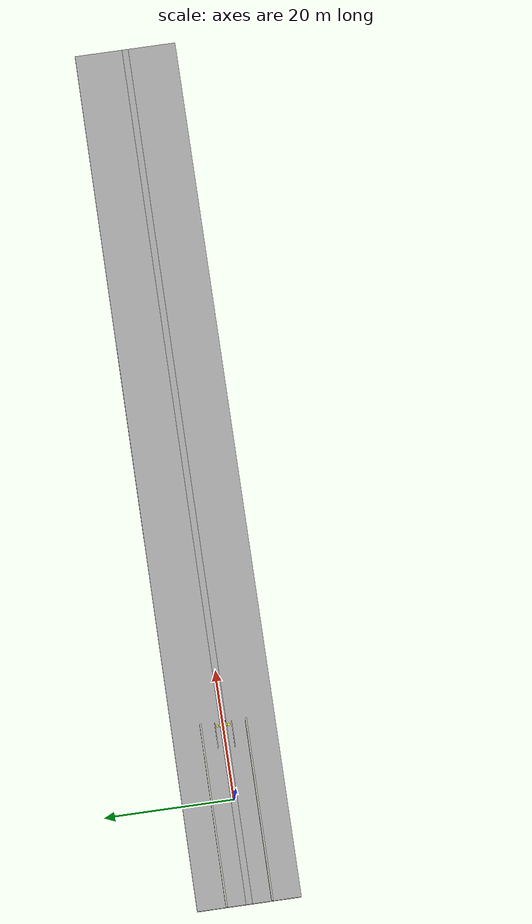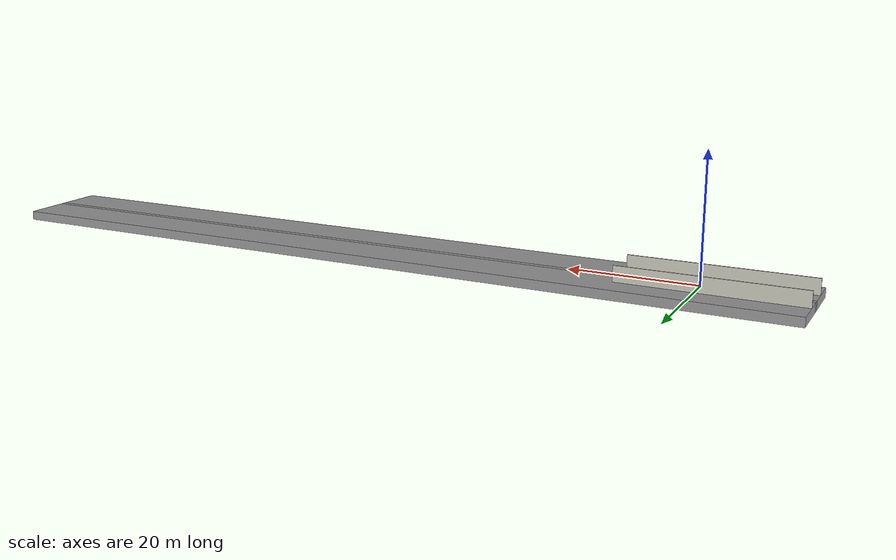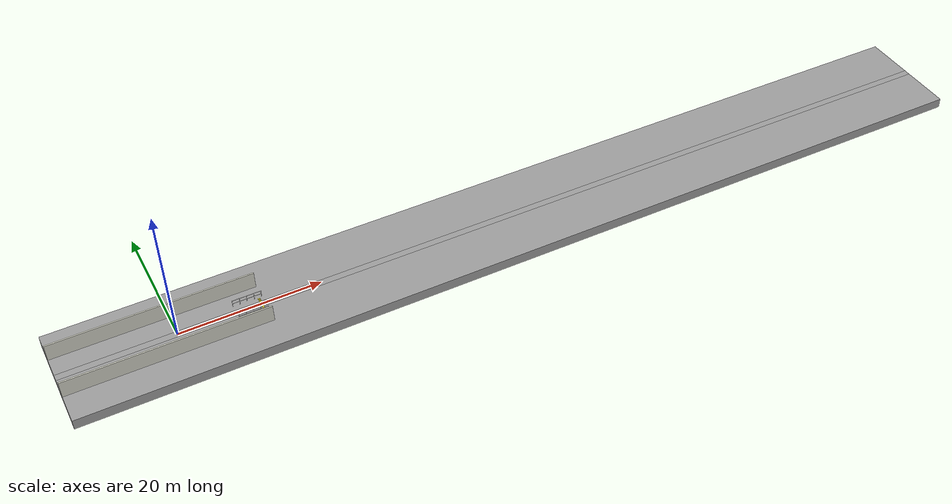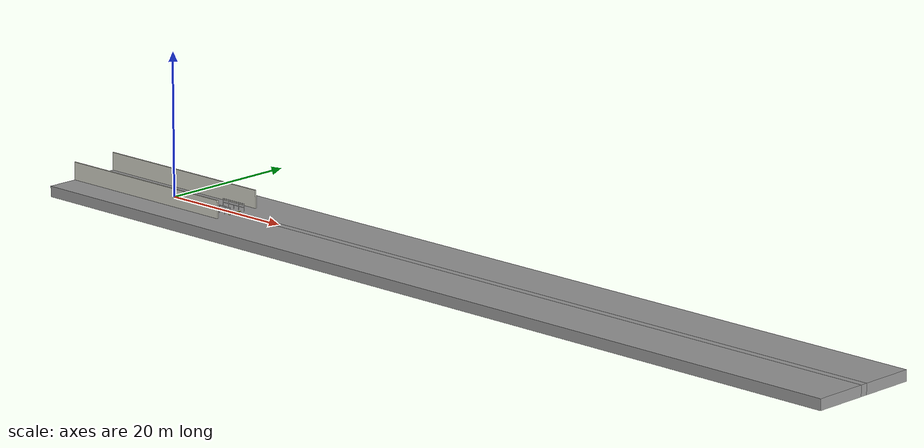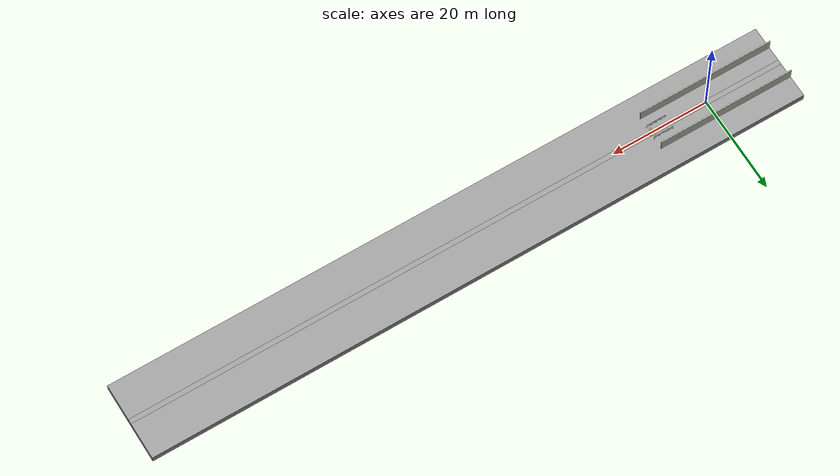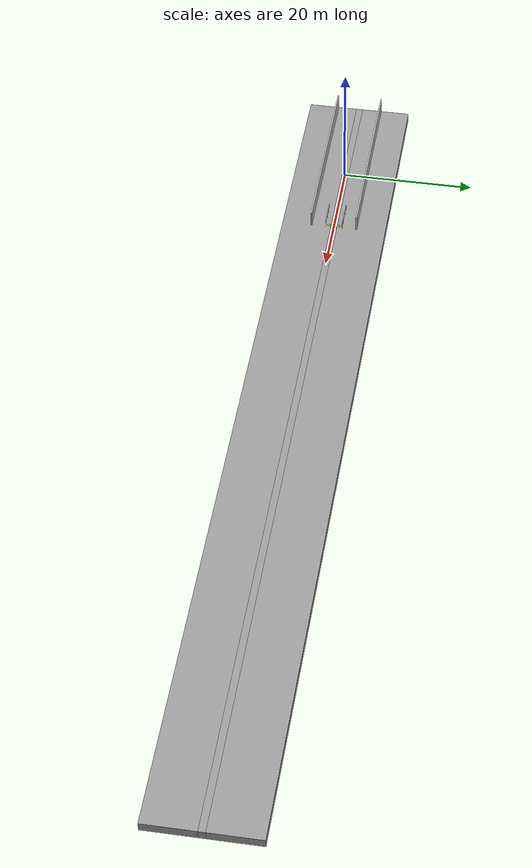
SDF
<?xml version="1.0" ?>
<sdf version="1.6">
  <world name="default">
    <gui>
      <camera name="gzclient_camera">
        <pose>6 -7 3.2 0 0.32 0.72</pose>
      </camera>
    </gui>

    <physics type="ode">
      <gravity>0 0 -9.81</gravity>
      <ode>
        <solver><type>quick</type><iters>20</iters><sor>1.0</sor></solver>
        <constraints>
          <cfm>0.0</cfm><erp>0.2</erp>
          <contact_max_correcting_vel>100.0</contact_max_correcting_vel>
          <contact_surface_layer>0.0</contact_surface_layer>
        </constraints>
      </ode>
      <real_time_update_rate>1000</real_time_update_rate>
      <max_step_size>0.001</max_step_size>
    </physics>

    <scene>
      <ambient>0.45 0.45 0.48 1</ambient>
      <background>0.72 0.78 0.88 1</background>
      <shadows>true</shadows>
      <grid>false</grid>
      <origin_visual>false</origin_visual>
    </scene>

    <!-- Single hard directional light.  Shadow contrast inside the drop is a real cue and
         must be identical between the hazard arm and the ctrl arm. -->
    <light name="sun" type="directional">
      <pose>0 0 12 0 0 0</pose>
      <diffuse>0.90 0.88 0.85 1</diffuse>
      <specular>0.25 0.25 0.25 1</specular>
      <direction>0.35 0.30 -0.89</direction>
      <cast_shadows>true</cast_shadows>
    </light>

    <model name="deck_left">
      <static>true</static>
      <pose>52 4.25 -0.75 0 0 0</pose>
      <link name="link">
        <collision name="c">
          <geometry><box><size>136 7.5 1.5</size></box></geometry>
          <surface><friction><ode><mu>1.0</mu><mu2>1.0</mu2></ode></friction></surface>
        </collision>
        <visual name="v">
          <geometry><box><size>136 7.5 1.5</size></box></geometry>
          <material><script><uri>file://media/materials/scripts/gazebo.material</uri>
            <name>Gazebo/Grey</name></script></material>
        </visual>
      </link>
    </model>
    <model name="deck_right">
      <static>true</static>
      <pose>52 -4.25 -0.75 0 0 0</pose>
      <link name="link">
        <collision name="c">
          <geometry><box><size>136 7.5 1.5</size></box></geometry>
          <surface><friction><ode><mu>1.0</mu><mu2>1.0</mu2></ode></friction></surface>
        </collision>
        <visual name="v">
          <geometry><box><size>136 7.5 1.5</size></box></geometry>
          <material><script><uri>file://media/materials/scripts/gazebo.material</uri>
            <name>Gazebo/Grey</name></script></material>
        </visual>
      </link>
    </model>
    <model name="deck_near">
      <static>true</static>
      <pose>-2 0 -0.75 0 0 0</pose>
      <link name="link">
        <collision name="c">
          <geometry><box><size>28 1 1.5</size></box></geometry>
          <surface><friction><ode><mu>1.0</mu><mu2>1.0</mu2></ode></friction></surface>
        </collision>
        <visual name="v">
          <geometry><box><size>28 1 1.5</size></box></geometry>
          <material><script><uri>file://media/materials/scripts/gazebo.material</uri>
            <name>Gazebo/Grey</name></script></material>
        </visual>
      </link>
    </model>
    <model name="deck_far">
      <static>true</static>
      <pose>66.125 0 -0.75 0 0 0</pose>
      <link name="link">
        <collision name="c">
          <geometry><box><size>107.75 1 1.5</size></box></geometry>
          <surface><friction><ode><mu>1.0</mu><mu2>1.0</mu2></ode></friction></surface>
        </collision>
        <visual name="v">
          <geometry><box><size>107.75 1 1.5</size></box></geometry>
          <material><script><uri>file://media/materials/scripts/gazebo.material</uri>
            <name>Gazebo/Grey</name></script></material>
        </visual>
      </link>
    </model>
    <model name="trench_floor">
      <static>true</static>
      <pose>12.125 0 -0.85 0 0 0</pose>
      <link name="link">
        <collision name="c">
          <geometry><box><size>0.25 1 0.3</size></box></geometry>
          <surface><friction><ode><mu>1.0</mu><mu2>1.0</mu2></ode></friction></surface>
        </collision>
        <visual name="v">
          <geometry><box><size>0.25 1 0.3</size></box></geometry>
          <material><script><uri>file://media/materials/scripts/gazebo.material</uri>
            <name>Gazebo/DarkGrey</name></script></material>
        </visual>
      </link>
    </model>
    <model name="wall_py">
      <static>true</static>
      <pose>-2 3.5 1.25 0 0 0</pose>
      <link name="link">
        <collision name="c">
          <geometry><box><size>28 0.2 2.5</size></box></geometry>
          <surface><friction><ode><mu>1.0</mu><mu2>1.0</mu2></ode></friction></surface>
        </collision>
        <visual name="v">
          <geometry><box><size>28 0.2 2.5</size></box></geometry>
          <material><script><uri>file://media/materials/scripts/gazebo.material</uri>
            <name>Gazebo/PaintedWall</name></script></material>
        </visual>
      </link>
    </model>
    <model name="wall_my">
      <static>true</static>
      <pose>-2 -3.5 1.25 0 0 0</pose>
      <link name="link">
        <collision name="c">
          <geometry><box><size>28 0.2 2.5</size></box></geometry>
          <surface><friction><ode><mu>1.0</mu><mu2>1.0</mu2></ode></friction></surface>
        </collision>
        <visual name="v">
          <geometry><box><size>28 0.2 2.5</size></box></geometry>
          <material><script><uri>file://media/materials/scripts/gazebo.material</uri>
            <name>Gazebo/PaintedWall</name></script></material>
        </visual>
      </link>
    </model>
    <model name="rail_py">
      <static>true</static>
      <pose>0 0 0 0 0 0</pose>
      <link name="link">
        <collision name="c_s0">
          <pose>8 1.3 0.55 0 0 0</pose>
          <geometry><cylinder><radius>0.03</radius><length>1.1</length></cylinder></geometry>
        </collision>
        <visual name="s0">
          <pose>8 1.3 0.55 0 0 0</pose>
          <geometry><cylinder><radius>0.03</radius><length>1.1</length></cylinder></geometry>
          <material><script><uri>file://media/materials/scripts/gazebo.material</uri>
            <name>Gazebo/White</name></script></material>
        </visual>
        <collision name="c_s1">
          <pose>9 1.3 0.55 0 0 0</pose>
          <geometry><cylinder><radius>0.03</radius><length>1.1</length></cylinder></geometry>
        </collision>
        <visual name="s1">
          <pose>9 1.3 0.55 0 0 0</pose>
          <geometry><cylinder><radius>0.03</radius><length>1.1</length></cylinder></geometry>
          <material><script><uri>file://media/materials/scripts/gazebo.material</uri>
            <name>Gazebo/White</name></script></material>
        </visual>
        <collision name="c_s2">
          <pose>10 1.3 0.55 0 0 0</pose>
          <geometry><cylinder><radius>0.03</radius><length>1.1</length></cylinder></geometry>
        </collision>
        <visual name="s2">
          <pose>10 1.3 0.55 0 0 0</pose>
          <geometry><cylinder><radius>0.03</radius><length>1.1</length></cylinder></geometry>
          <material><script><uri>file://media/materials/scripts/gazebo.material</uri>
            <name>Gazebo/White</name></script></material>
        </visual>
        <collision name="c_s3">
          <pose>11 1.3 0.55 0 0 0</pose>
          <geometry><cylinder><radius>0.03</radius><length>1.1</length></cylinder></geometry>
        </collision>
        <visual name="s3">
          <pose>11 1.3 0.55 0 0 0</pose>
          <geometry><cylinder><radius>0.03</radius><length>1.1</length></cylinder></geometry>
          <material><script><uri>file://media/materials/scripts/gazebo.material</uri>
            <name>Gazebo/White</name></script></material>
        </visual>
        <collision name="c_s4">
          <pose>12 1.3 0.55 0 0 0</pose>
          <geometry><cylinder><radius>0.03</radius><length>1.1</length></cylinder></geometry>
        </collision>
        <visual name="s4">
          <pose>12 1.3 0.55 0 0 0</pose>
          <geometry><cylinder><radius>0.03</radius><length>1.1</length></cylinder></geometry>
          <material><script><uri>file://media/materials/scripts/gazebo.material</uri>
            <name>Gazebo/White</name></script></material>
        </visual>
        <collision name="c_s5">
          <pose>10 1.3 1.05 0 1.5708 0</pose>
          <geometry><cylinder><radius>0.035</radius><length>4.1</length></cylinder></geometry>
        </collision>
        <visual name="s5">
          <pose>10 1.3 1.05 0 1.5708 0</pose>
          <geometry><cylinder><radius>0.035</radius><length>4.1</length></cylinder></geometry>
          <material><script><uri>file://media/materials/scripts/gazebo.material</uri>
            <name>Gazebo/White</name></script></material>
        </visual>
        <collision name="c_s6">
          <pose>10 1.3 0.55 0 1.5708 0</pose>
          <geometry><cylinder><radius>0.035</radius><length>4.1</length></cylinder></geometry>
        </collision>
        <visual name="s6">
          <pose>10 1.3 0.55 0 1.5708 0</pose>
          <geometry><cylinder><radius>0.035</radius><length>4.1</length></cylinder></geometry>
          <material><script><uri>file://media/materials/scripts/gazebo.material</uri>
            <name>Gazebo/White</name></script></material>
        </visual>
      </link>
    </model>
    <model name="rail_my">
      <static>true</static>
      <pose>0 0 0 0 0 0</pose>
      <link name="link">
        <collision name="c_s0">
          <pose>8 -1.3 0.55 0 0 0</pose>
          <geometry><cylinder><radius>0.03</radius><length>1.1</length></cylinder></geometry>
        </collision>
        <visual name="s0">
          <pose>8 -1.3 0.55 0 0 0</pose>
          <geometry><cylinder><radius>0.03</radius><length>1.1</length></cylinder></geometry>
          <material><script><uri>file://media/materials/scripts/gazebo.material</uri>
            <name>Gazebo/White</name></script></material>
        </visual>
        <collision name="c_s1">
          <pose>9 -1.3 0.55 0 0 0</pose>
          <geometry><cylinder><radius>0.03</radius><length>1.1</length></cylinder></geometry>
        </collision>
        <visual name="s1">
          <pose>9 -1.3 0.55 0 0 0</pose>
          <geometry><cylinder><radius>0.03</radius><length>1.1</length></cylinder></geometry>
          <material><script><uri>file://media/materials/scripts/gazebo.material</uri>
            <name>Gazebo/White</name></script></material>
        </visual>
        <collision name="c_s2">
          <pose>10 -1.3 0.55 0 0 0</pose>
          <geometry><cylinder><radius>0.03</radius><length>1.1</length></cylinder></geometry>
        </collision>
        <visual name="s2">
          <pose>10 -1.3 0.55 0 0 0</pose>
          <geometry><cylinder><radius>0.03</radius><length>1.1</length></cylinder></geometry>
          <material><script><uri>file://media/materials/scripts/gazebo.material</uri>
            <name>Gazebo/White</name></script></material>
        </visual>
        <collision name="c_s3">
          <pose>11 -1.3 0.55 0 0 0</pose>
          <geometry><cylinder><radius>0.03</radius><length>1.1</length></cylinder></geometry>
        </collision>
        <visual name="s3">
          <pose>11 -1.3 0.55 0 0 0</pose>
          <geometry><cylinder><radius>0.03</radius><length>1.1</length></cylinder></geometry>
          <material><script><uri>file://media/materials/scripts/gazebo.material</uri>
            <name>Gazebo/White</name></script></material>
        </visual>
        <collision name="c_s4">
          <pose>12 -1.3 0.55 0 0 0</pose>
          <geometry><cylinder><radius>0.03</radius><length>1.1</length></cylinder></geometry>
        </collision>
        <visual name="s4">
          <pose>12 -1.3 0.55 0 0 0</pose>
          <geometry><cylinder><radius>0.03</radius><length>1.1</length></cylinder></geometry>
          <material><script><uri>file://media/materials/scripts/gazebo.material</uri>
            <name>Gazebo/White</name></script></material>
        </visual>
        <collision name="c_s5">
          <pose>10 -1.3 1.05 0 1.5708 0</pose>
          <geometry><cylinder><radius>0.035</radius><length>4.1</length></cylinder></geometry>
        </collision>
        <visual name="s5">
          <pose>10 -1.3 1.05 0 1.5708 0</pose>
          <geometry><cylinder><radius>0.035</radius><length>4.1</length></cylinder></geometry>
          <material><script><uri>file://media/materials/scripts/gazebo.material</uri>
            <name>Gazebo/White</name></script></material>
        </visual>
        <collision name="c_s6">
          <pose>10 -1.3 0.55 0 1.5708 0</pose>
          <geometry><cylinder><radius>0.035</radius><length>4.1</length></cylinder></geometry>
        </collision>
        <visual name="s6">
          <pose>10 -1.3 0.55 0 1.5708 0</pose>
          <geometry><cylinder><radius>0.035</radius><length>4.1</length></cylinder></geometry>
          <material><script><uri>file://media/materials/scripts/gazebo.material</uri>
            <name>Gazebo/White</name></script></material>
        </visual>
      </link>
    </model>
    <model name="warn_strip">
      <static>true</static>
      <pose>0 0 0 0 0 0</pose>
      <link name="link">
        <visual name="slab">
          <pose>11.55 0 0.003 0 0 0</pose>
          <geometry><box><size>0.3 2.2 0.006</size></box></geometry>
          <material><script><uri>file://media/materials/scripts/gazebo.material</uri>
            <name>Gazebo/Yellow</name></script></material>
        </visual>
        <visual name="d0">
          <pose>11.45 -1 0.01 0 0 0</pose>
          <geometry><box><size>0.05 0.05 0.008</size></box></geometry>
          <material><script><uri>file://media/materials/scripts/gazebo.material</uri>
            <name>Gazebo/ZincYellow</name></script></material>
        </visual>
        <visual name="d1">
          <pose>11.45 -0.875 0.01 0 0 0</pose>
          <geometry><box><size>0.05 0.05 0.008</size></box></geometry>
          <material><script><uri>file://media/materials/scripts/gazebo.material</uri>
            <name>Gazebo/ZincYellow</name></script></material>
        </visual>
        <visual name="d2">
          <pose>11.45 -0.75 0.01 0 0 0</pose>
          <geometry><box><size>0.05 0.05 0.008</size></box></geometry>
          <material><script><uri>file://media/materials/scripts/gazebo.material</uri>
            <name>Gazebo/ZincYellow</name></script></material>
        </visual>
        <visual name="d3">
          <pose>11.45 -0.625 0.01 0 0 0</pose>
          <geometry><box><size>0.05 0.05 0.008</size></box></geometry>
          <material><script><uri>file://media/materials/scripts/gazebo.material</uri>
            <name>Gazebo/ZincYellow</name></script></material>
        </visual>
        <visual name="d4">
          <pose>11.45 -0.5 0.01 0 0 0</pose>
          <geometry><box><size>0.05 0.05 0.008</size></box></geometry>
          <material><script><uri>file://media/materials/scripts/gazebo.material</uri>
            <name>Gazebo/ZincYellow</name></script></material>
        </visual>
        <visual name="d5">
          <pose>11.45 -0.375 0.01 0 0 0</pose>
          <geometry><box><size>0.05 0.05 0.008</size></box></geometry>
          <material><script><uri>file://media/materials/scripts/gazebo.material</uri>
            <name>Gazebo/ZincYellow</name></script></material>
        </visual>
        <visual name="d6">
          <pose>11.45 -0.25 0.01 0 0 0</pose>
          <geometry><box><size>0.05 0.05 0.008</size></box></geometry>
          <material><script><uri>file://media/materials/scripts/gazebo.material</uri>
            <name>Gazebo/ZincYellow</name></script></material>
        </visual>
        <visual name="d7">
          <pose>11.45 -0.125 0.01 0 0 0</pose>
          <geometry><box><size>0.05 0.05 0.008</size></box></geometry>
          <material><script><uri>file://media/materials/scripts/gazebo.material</uri>
            <name>Gazebo/ZincYellow</name></script></material>
        </visual>
        <visual name="d8">
          <pose>11.45 0 0.01 0 0 0</pose>
          <geometry><box><size>0.05 0.05 0.008</size></box></geometry>
          <material><script><uri>file://media/materials/scripts/gazebo.material</uri>
            <name>Gazebo/ZincYellow</name></script></material>
        </visual>
        <visual name="d9">
          <pose>11.45 0.125 0.01 0 0 0</pose>
          <geometry><box><size>0.05 0.05 0.008</size></box></geometry>
          <material><script><uri>file://media/materials/scripts/gazebo.material</uri>
            <name>Gazebo/ZincYellow</name></script></material>
        </visual>
        <visual name="d10">
          <pose>11.45 0.25 0.01 0 0 0</pose>
          <geometry><box><size>0.05 0.05 0.008</size></box></geometry>
          <material><script><uri>file://media/materials/scripts/gazebo.material</uri>
            <name>Gazebo/ZincYellow</name></script></material>
        </visual>
        <visual name="d11">
          <pose>11.45 0.375 0.01 0 0 0</pose>
          <geometry><box><size>0.05 0.05 0.008</size></box></geometry>
          <material><script><uri>file://media/materials/scripts/gazebo.material</uri>
            <name>Gazebo/ZincYellow</name></script></material>
        </visual>
        <visual name="d12">
          <pose>11.45 0.5 0.01 0 0 0</pose>
          <geometry><box><size>0.05 0.05 0.008</size></box></geometry>
          <material><script><uri>file://media/materials/scripts/gazebo.material</uri>
            <name>Gazebo/ZincYellow</name></script></material>
        </visual>
        <visual name="d13">
          <pose>11.45 0.625 0.01 0 0 0</pose>
          <geometry><box><size>0.05 0.05 0.008</size></box></geometry>
          <material><script><uri>file://media/materials/scripts/gazebo.material</uri>
            <name>Gazebo/ZincYellow</name></script></material>
        </visual>
        <visual name="d14">
          <pose>11.45 0.75 0.01 0 0 0</pose>
          <geometry><box><size>0.05 0.05 0.008</size></box></geometry>
          <material><script><uri>file://media/materials/scripts/gazebo.material</uri>
            <name>Gazebo/ZincYellow</name></script></material>
        </visual>
        <visual name="d15">
          <pose>11.45 0.875 0.01 0 0 0</pose>
          <geometry><box><size>0.05 0.05 0.008</size></box></geometry>
          <material><script><uri>file://media/materials/scripts/gazebo.material</uri>
            <name>Gazebo/ZincYellow</name></script></material>
        </visual>
        <visual name="d16">
          <pose>11.45 1 0.01 0 0 0</pose>
          <geometry><box><size>0.05 0.05 0.008</size></box></geometry>
          <material><script><uri>file://media/materials/scripts/gazebo.material</uri>
            <name>Gazebo/ZincYellow</name></script></material>
        </visual>
        <visual name="d17">
          <pose>11.55 -1 0.01 0 0 0</pose>
          <geometry><box><size>0.05 0.05 0.008</size></box></geometry>
          <material><script><uri>file://media/materials/scripts/gazebo.material</uri>
            <name>Gazebo/ZincYellow</name></script></material>
        </visual>
        <visual name="d18">
          <pose>11.55 -0.875 0.01 0 0 0</pose>
          <geometry><box><size>0.05 0.05 0.008</size></box></geometry>
          <material><script><uri>file://media/materials/scripts/gazebo.material</uri>
            <name>Gazebo/ZincYellow</name></script></material>
        </visual>
        <visual name="d19">
          <pose>11.55 -0.75 0.01 0 0 0</pose>
          <geometry><box><size>0.05 0.05 0.008</size></box></geometry>
          <material><script><uri>file://media/materials/scripts/gazebo.material</uri>
            <name>Gazebo/ZincYellow</name></script></material>
        </visual>
        <visual name="d20">
          <pose>11.55 -0.625 0.01 0 0 0</pose>
          <geometry><box><size>0.05 0.05 0.008</size></box></geometry>
          <material><script><uri>file://media/materials/scripts/gazebo.material</uri>
            <name>Gazebo/ZincYellow</name></script></material>
        </visual>
        <visual name="d21">
          <pose>11.55 -0.5 0.01 0 0 0</pose>
          <geometry><box><size>0.05 0.05 0.008</size></box></geometry>
          <material><script><uri>file://media/materials/scripts/gazebo.material</uri>
            <name>Gazebo/ZincYellow</name></script></material>
        </visual>
        <visual name="d22">
          <pose>11.55 -0.375 0.01 0 0 0</pose>
          <geometry><box><size>0.05 0.05 0.008</size></box></geometry>
          <material><script><uri>file://media/materials/scripts/gazebo.material</uri>
            <name>Gazebo/ZincYellow</name></script></material>
        </visual>
        <visual name="d23">
          <pose>11.55 -0.25 0.01 0 0 0</pose>
          <geometry><box><size>0.05 0.05 0.008</size></box></geometry>
          <material><script><uri>file://media/materials/scripts/gazebo.material</uri>
            <name>Gazebo/ZincYellow</name></script></material>
        </visual>
        <visual name="d24">
          <pose>11.55 -0.125 0.01 0 0 0</pose>
          <geometry><box><size>0.05 0.05 0.008</size></box></geometry>
          <material><script><uri>file://media/materials/scripts/gazebo.material</uri>
            <name>Gazebo/ZincYellow</name></script></material>
        </visual>
        <visual name="d25">
          <pose>11.55 0 0.01 0 0 0</pose>
          <geometry><box><size>0.05 0.05 0.008</size></box></geometry>
          <material><script><uri>file://media/materials/scripts/gazebo.material</uri>
            <name>Gazebo/ZincYellow</name></script></material>
        </visual>
        <visual name="d26">
          <pose>11.55 0.125 0.01 0 0 0</pose>
          <geometry><box><size>0.05 0.05 0.008</size></box></geometry>
          <material><script><uri>file://media/materials/scripts/gazebo.material</uri>
            <name>Gazebo/ZincYellow</name></script></material>
        </visual>
        <visual name="d27">
          <pose>11.55 0.25 0.01 0 0 0</pose>
          <geometry><box><size>0.05 0.05 0.008</size></box></geometry>
          <material><script><uri>file://media/materials/scripts/gazebo.material</uri>
            <name>Gazebo/ZincYellow</name></script></material>
        </visual>
        <visual name="d28">
          <pose>11.55 0.375 0.01 0 0 0</pose>
          <geometry><box><size>0.05 0.05 0.008</size></box></geometry>
          <material><script><uri>file://media/materials/scripts/gazebo.material</uri>
            <name>Gazebo/ZincYellow</name></script></material>
        </visual>
        <visual name="d29">
          <pose>11.55 0.5 0.01 0 0 0</pose>
          <geometry><box><size>0.05 0.05 0.008</size></box></geometry>
          <material><script><uri>file://media/materials/scripts/gazebo.material</uri>
            <name>Gazebo/ZincYellow</name></script></material>
        </visual>
        <visual name="d30">
          <pose>11.55 0.625 0.01 0 0 0</pose>
          <geometry><box><size>0.05 0.05 0.008</size></box></geometry>
          <material><script><uri>file://media/materials/scripts/gazebo.material</uri>
            <name>Gazebo/ZincYellow</name></script></material>
        </visual>
        <visual name="d31">
          <pose>11.55 0.75 0.01 0 0 0</pose>
          <geometry><box><size>0.05 0.05 0.008</size></box></geometry>
          <material><script><uri>file://media/materials/scripts/gazebo.material</uri>
            <name>Gazebo/ZincYellow</name></script></material>
        </visual>
        <visual name="d32">
          <pose>11.55 0.875 0.01 0 0 0</pose>
          <geometry><box><size>0.05 0.05 0.008</size></box></geometry>
          <material><script><uri>file://media/materials/scripts/gazebo.material</uri>
            <name>Gazebo/ZincYellow</name></script></material>
        </visual>
        <visual name="d33">
          <pose>11.55 1 0.01 0 0 0</pose>
          <geometry><box><size>0.05 0.05 0.008</size></box></geometry>
          <material><script><uri>file://media/materials/scripts/gazebo.material</uri>
            <name>Gazebo/ZincYellow</name></script></material>
        </visual>
        <visual name="d34">
          <pose>11.65 -1 0.01 0 0 0</pose>
          <geometry><box><size>0.05 0.05 0.008</size></box></geometry>
          <material><script><uri>file://media/materials/scripts/gazebo.material</uri>
            <name>Gazebo/ZincYellow</name></script></material>
        </visual>
        <visual name="d35">
          <pose>11.65 -0.875 0.01 0 0 0</pose>
          <geometry><box><size>0.05 0.05 0.008</size></box></geometry>
          <material><script><uri>file://media/materials/scripts/gazebo.material</uri>
            <name>Gazebo/ZincYellow</name></script></material>
        </visual>
        <visual name="d36">
          <pose>11.65 -0.75 0.01 0 0 0</pose>
          <geometry><box><size>0.05 0.05 0.008</size></box></geometry>
          <material><script><uri>file://media/materials/scripts/gazebo.material</uri>
            <name>Gazebo/ZincYellow</name></script></material>
        </visual>
        <visual name="d37">
          <pose>11.65 -0.625 0.01 0 0 0</pose>
          <geometry><box><size>0.05 0.05 0.008</size></box></geometry>
          <material><script><uri>file://media/materials/scripts/gazebo.material</uri>
            <name>Gazebo/ZincYellow</name></script></material>
        </visual>
        <visual name="d38">
          <pose>11.65 -0.5 0.01 0 0 0</pose>
          <geometry><box><size>0.05 0.05 0.008</size></box></geometry>
          <material><script><uri>file://media/materials/scripts/gazebo.material</uri>
            <name>Gazebo/ZincYellow</name></script></material>
        </visual>
        <visual name="d39">
          <pose>11.65 -0.375 0.01 0 0 0</pose>
          <geometry><box><size>0.05 0.05 0.008</size></box></geometry>
          <material><script><uri>file://media/materials/scripts/gazebo.material</uri>
            <name>Gazebo/ZincYellow</name></script></material>
        </visual>
        <visual name="d40">
          <pose>11.65 -0.25 0.01 0 0 0</pose>
          <geometry><box><size>0.05 0.05 0.008</size></box></geometry>
          <material><script><uri>file://media/materials/scripts/gazebo.material</uri>
            <name>Gazebo/ZincYellow</name></script></material>
        </visual>
        <visual name="d41">
          <pose>11.65 -0.125 0.01 0 0 0</pose>
          <geometry><box><size>0.05 0.05 0.008</size></box></geometry>
          <material><script><uri>file://media/materials/scripts/gazebo.material</uri>
            <name>Gazebo/ZincYellow</name></script></material>
        </visual>
        <visual name="d42">
          <pose>11.65 0 0.01 0 0 0</pose>
          <geometry><box><size>0.05 0.05 0.008</size></box></geometry>
          <material><script><uri>file://media/materials/scripts/gazebo.material</uri>
            <name>Gazebo/ZincYellow</name></script></material>
        </visual>
        <visual name="d43">
          <pose>11.65 0.125 0.01 0 0 0</pose>
          <geometry><box><size>0.05 0.05 0.008</size></box></geometry>
          <material><script><uri>file://media/materials/scripts/gazebo.material</uri>
            <name>Gazebo/ZincYellow</name></script></material>
        </visual>
        <visual name="d44">
          <pose>11.65 0.25 0.01 0 0 0</pose>
          <geometry><box><size>0.05 0.05 0.008</size></box></geometry>
          <material><script><uri>file://media/materials/scripts/gazebo.material</uri>
            <name>Gazebo/ZincYellow</name></script></material>
        </visual>
        <visual name="d45">
          <pose>11.65 0.375 0.01 0 0 0</pose>
          <geometry><box><size>0.05 0.05 0.008</size></box></geometry>
          <material><script><uri>file://media/materials/scripts/gazebo.material</uri>
            <name>Gazebo/ZincYellow</name></script></material>
        </visual>
        <visual name="d46">
          <pose>11.65 0.5 0.01 0 0 0</pose>
          <geometry><box><size>0.05 0.05 0.008</size></box></geometry>
          <material><script><uri>file://media/materials/scripts/gazebo.material</uri>
            <name>Gazebo/ZincYellow</name></script></material>
        </visual>
        <visual name="d47">
          <pose>11.65 0.625 0.01 0 0 0</pose>
          <geometry><box><size>0.05 0.05 0.008</size></box></geometry>
          <material><script><uri>file://media/materials/scripts/gazebo.material</uri>
            <name>Gazebo/ZincYellow</name></script></material>
        </visual>
        <visual name="d48">
          <pose>11.65 0.75 0.01 0 0 0</pose>
          <geometry><box><size>0.05 0.05 0.008</size></box></geometry>
          <material><script><uri>file://media/materials/scripts/gazebo.material</uri>
            <name>Gazebo/ZincYellow</name></script></material>
        </visual>
        <visual name="d49">
          <pose>11.65 0.875 0.01 0 0 0</pose>
          <geometry><box><size>0.05 0.05 0.008</size></box></geometry>
          <material><script><uri>file://media/materials/scripts/gazebo.material</uri>
            <name>Gazebo/ZincYellow</name></script></material>
        </visual>
        <visual name="d50">
          <pose>11.65 1 0.01 0 0 0</pose>
          <geometry><box><size>0.05 0.05 0.008</size></box></geometry>
          <material><script><uri>file://media/materials/scripts/gazebo.material</uri>
            <name>Gazebo/ZincYellow</name></script></material>
        </visual>
      </link>
    </model>
    <!-- ===== capture cameras (sensor-only links, no visible body) ===== -->
    <model name="cam_h03_d2">
      <static>true</static>
      <pose>10 0 0.3 0 0.174533 0</pose>
      <link name="link">
        <sensor name="h03_d2" type="camera">
          <camera name="h03_d2">
            <horizontal_fov>1.047198</horizontal_fov>
            <image><width>1920</width><height>1080</height><format>R8G8B8</format></image>
            <clip><near>0.05</near><far>150</far></clip>
          </camera>
          <always_on>0</always_on>
          <update_rate>1.0</update_rate>
          <visualize>0</visualize>
          <plugin name="plug_h03_d2" filename="libgazebo_ros_camera.so">
            <ros><namespace>/gzcam/h03_d2</namespace></ros>
            <camera_name>cam</camera_name>
            <frame_name>gzcam_h03_d2_optical</frame_name>
            <hack_baseline>0.0</hack_baseline>
          </plugin>
        </sensor>
      </link>
    </model>
    <model name="cam_h03_d5">
      <static>true</static>
      <pose>7 0 0.3 0 0.174533 0</pose>
      <link name="link">
        <sensor name="h03_d5" type="camera">
          <camera name="h03_d5">
            <horizontal_fov>1.047198</horizontal_fov>
            <image><width>1920</width><height>1080</height><format>R8G8B8</format></image>
            <clip><near>0.05</near><far>150</far></clip>
          </camera>
          <always_on>0</always_on>
          <update_rate>1.0</update_rate>
          <visualize>0</visualize>
          <plugin name="plug_h03_d5" filename="libgazebo_ros_camera.so">
            <ros><namespace>/gzcam/h03_d5</namespace></ros>
            <camera_name>cam</camera_name>
            <frame_name>gzcam_h03_d5_optical</frame_name>
            <hack_baseline>0.0</hack_baseline>
          </plugin>
        </sensor>
      </link>
    </model>
    <model name="cam_h03_d10">
      <static>true</static>
      <pose>2 0 0.3 0 0.174533 0</pose>
      <link name="link">
        <sensor name="h03_d10" type="camera">
          <camera name="h03_d10">
            <horizontal_fov>1.047198</horizontal_fov>
            <image><width>1920</width><height>1080</height><format>R8G8B8</format></image>
            <clip><near>0.05</near><far>150</far></clip>
          </camera>
          <always_on>0</always_on>
          <update_rate>1.0</update_rate>
          <visualize>0</visualize>
          <plugin name="plug_h03_d10" filename="libgazebo_ros_camera.so">
            <ros><namespace>/gzcam/h03_d10</namespace></ros>
            <camera_name>cam</camera_name>
            <frame_name>gzcam_h03_d10_optical</frame_name>
            <hack_baseline>0.0</hack_baseline>
          </plugin>
        </sensor>
      </link>
    </model>
    <model name="cam_h09_d2">
      <static>true</static>
      <pose>10 0 0.9 0 0.174533 0</pose>
      <link name="link">
        <sensor name="h09_d2" type="camera">
          <camera name="h09_d2">
            <horizontal_fov>1.047198</horizontal_fov>
            <image><width>1920</width><height>1080</height><format>R8G8B8</format></image>
            <clip><near>0.05</near><far>150</far></clip>
          </camera>
          <always_on>0</always_on>
          <update_rate>1.0</update_rate>
          <visualize>0</visualize>
          <plugin name="plug_h09_d2" filename="libgazebo_ros_camera.so">
            <ros><namespace>/gzcam/h09_d2</namespace></ros>
            <camera_name>cam</camera_name>
            <frame_name>gzcam_h09_d2_optical</frame_name>
            <hack_baseline>0.0</hack_baseline>
          </plugin>
        </sensor>
      </link>
    </model>
    <model name="cam_h09_d5">
      <static>true</static>
      <pose>7 0 0.9 0 0.174533 0</pose>
      <link name="link">
        <sensor name="h09_d5" type="camera">
          <camera name="h09_d5">
            <horizontal_fov>1.047198</horizontal_fov>
            <image><width>1920</width><height>1080</height><format>R8G8B8</format></image>
            <clip><near>0.05</near><far>150</far></clip>
          </camera>
          <always_on>0</always_on>
          <update_rate>1.0</update_rate>
          <visualize>0</visualize>
          <plugin name="plug_h09_d5" filename="libgazebo_ros_camera.so">
            <ros><namespace>/gzcam/h09_d5</namespace></ros>
            <camera_name>cam</camera_name>
            <frame_name>gzcam_h09_d5_optical</frame_name>
            <hack_baseline>0.0</hack_baseline>
          </plugin>
        </sensor>
      </link>
    </model>
    <model name="cam_h09_d10">
      <static>true</static>
      <pose>2 0 0.9 0 0.174533 0</pose>
      <link name="link">
        <sensor name="h09_d10" type="camera">
          <camera name="h09_d10">
            <horizontal_fov>1.047198</horizontal_fov>
            <image><width>1920</width><height>1080</height><format>R8G8B8</format></image>
            <clip><near>0.05</near><far>150</far></clip>
          </camera>
          <always_on>0</always_on>
          <update_rate>1.0</update_rate>
          <visualize>0</visualize>
          <plugin name="plug_h09_d10" filename="libgazebo_ros_camera.so">
            <ros><namespace>/gzcam/h09_d10</namespace></ros>
            <camera_name>cam</camera_name>
            <frame_name>gzcam_h09_d10_optical</frame_name>
            <hack_baseline>0.0</hack_baseline>
          </plugin>
        </sensor>
      </link>
    </model>
    <model name="cam_h03_d12">
      <static>true</static>
      <pose>10.8 0 0.3 0 0.174533 0</pose>
      <link name="link">
        <sensor name="h03_d12" type="camera">
          <camera name="h03_d12">
            <horizontal_fov>1.047198</horizontal_fov>
            <image><width>1920</width><height>1080</height><format>R8G8B8</format></image>
            <clip><near>0.05</near><far>150</far></clip>
          </camera>
          <always_on>0</always_on>
          <update_rate>1.0</update_rate>
          <visualize>0</visualize>
          <plugin name="plug_h03_d12" filename="libgazebo_ros_camera.so">
            <ros><namespace>/gzcam/h03_d12</namespace></ros>
            <camera_name>cam</camera_name>
            <frame_name>gzcam_h03_d12_optical</frame_name>
            <hack_baseline>0.0</hack_baseline>
          </plugin>
        </sensor>
      </link>
    </model>
    <model name="cam_rs_d2">
      <static>true</static>
      <pose>10 0 0.125 0 0.261 0</pose>
      <link name="link">
        <sensor name="rs_d2" type="camera">
          <camera name="rs_d2">
            <horizontal_fov>1.204300</horizontal_fov>
            <image><width>1280</width><height>720</height><format>R8G8B8</format></image>
            <clip><near>0.05</near><far>150</far></clip>
          </camera>
          <always_on>0</always_on>
          <update_rate>1.0</update_rate>
          <visualize>0</visualize>
          <plugin name="plug_rs_d2" filename="libgazebo_ros_camera.so">
            <ros><namespace>/gzcam/rs_d2</namespace></ros>
            <camera_name>cam</camera_name>
            <frame_name>gzcam_rs_d2_optical</frame_name>
            <hack_baseline>0.0</hack_baseline>
          </plugin>
        </sensor>
      </link>
    </model>
    <model name="cam_rs_d5">
      <static>true</static>
      <pose>7 0 0.125 0 0.261 0</pose>
      <link name="link">
        <sensor name="rs_d5" type="camera">
          <camera name="rs_d5">
            <horizontal_fov>1.204300</horizontal_fov>
            <image><width>1280</width><height>720</height><format>R8G8B8</format></image>
            <clip><near>0.05</near><far>150</far></clip>
          </camera>
          <always_on>0</always_on>
          <update_rate>1.0</update_rate>
          <visualize>0</visualize>
          <plugin name="plug_rs_d5" filename="libgazebo_ros_camera.so">
            <ros><namespace>/gzcam/rs_d5</namespace></ros>
            <camera_name>cam</camera_name>
            <frame_name>gzcam_rs_d5_optical</frame_name>
            <hack_baseline>0.0</hack_baseline>
          </plugin>
        </sensor>
      </link>
    </model>
  </world>
</sdf>
